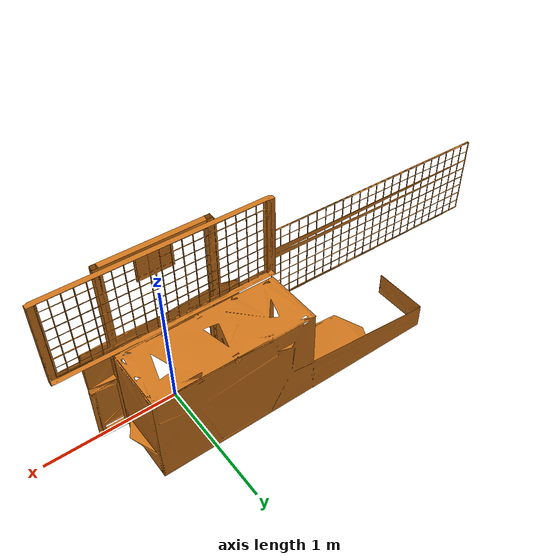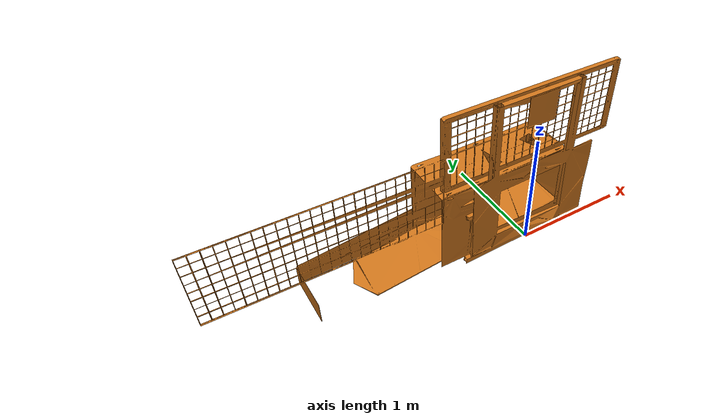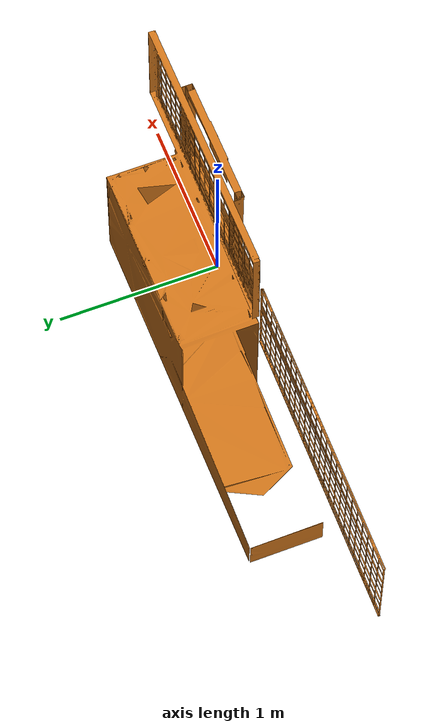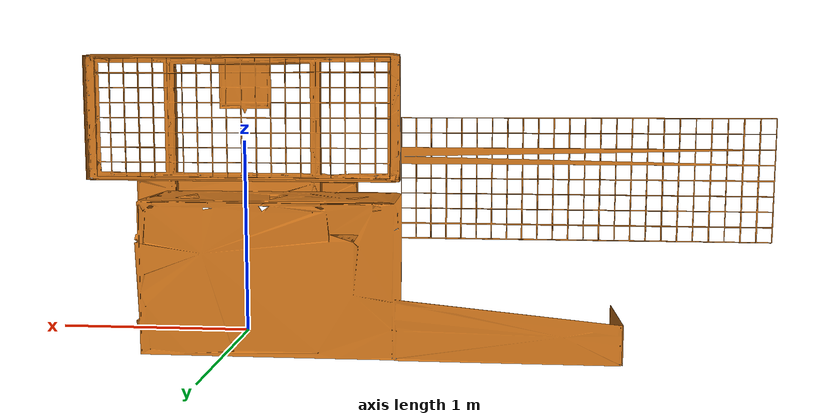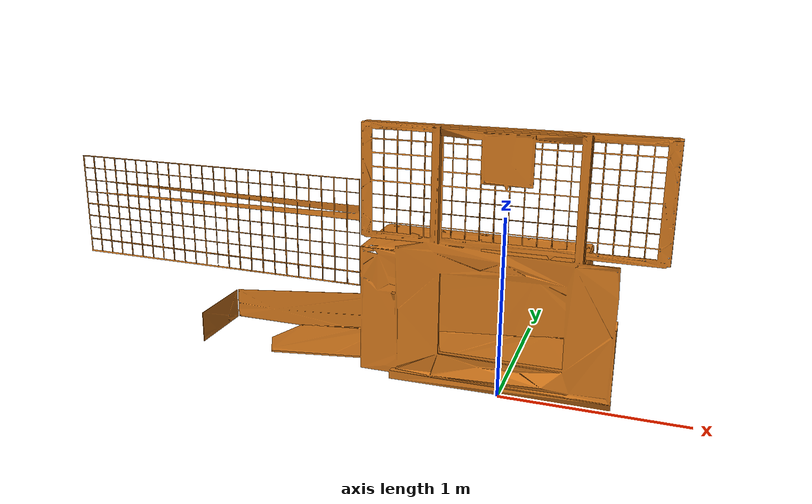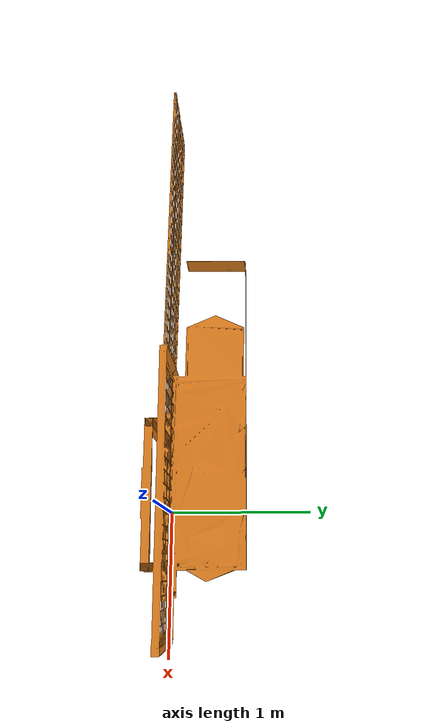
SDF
<?xml version="1.0"?>
<sdf version="1.8">
  <model name="reefscape_processor">
    <static>true</static>

    <link name="link">
      <visual name="visual">
        <geometry>
          <mesh>
            <uri>meshes/processor.stl</uri>
            <scale>1 1 1</scale>
          </mesh>
        </geometry>
        <material>
          <ambient>0.40 0.22 0.05 1</ambient>
          <diffuse>0.80 0.45 0.10 1</diffuse>
        </material>
      </visual>

      <collision name="collision">
        <geometry>
          <mesh>
            <uri>meshes/processor.stl</uri>
            <scale>1 1 1</scale>
          </mesh>
        </geometry>
      </collision>
    </link>
  </model>
</sdf>
